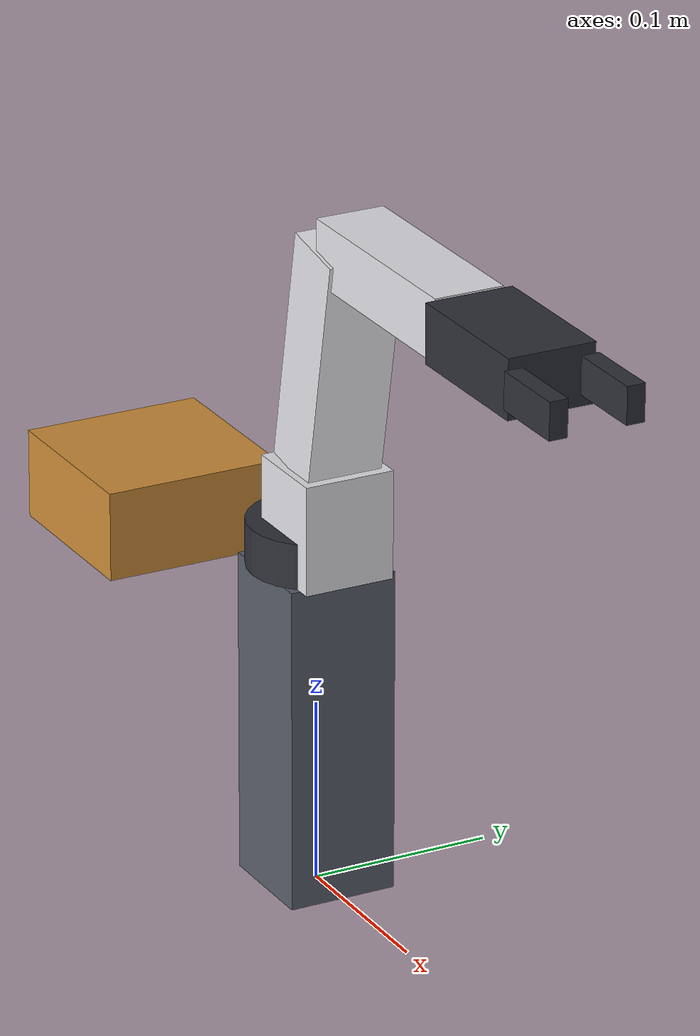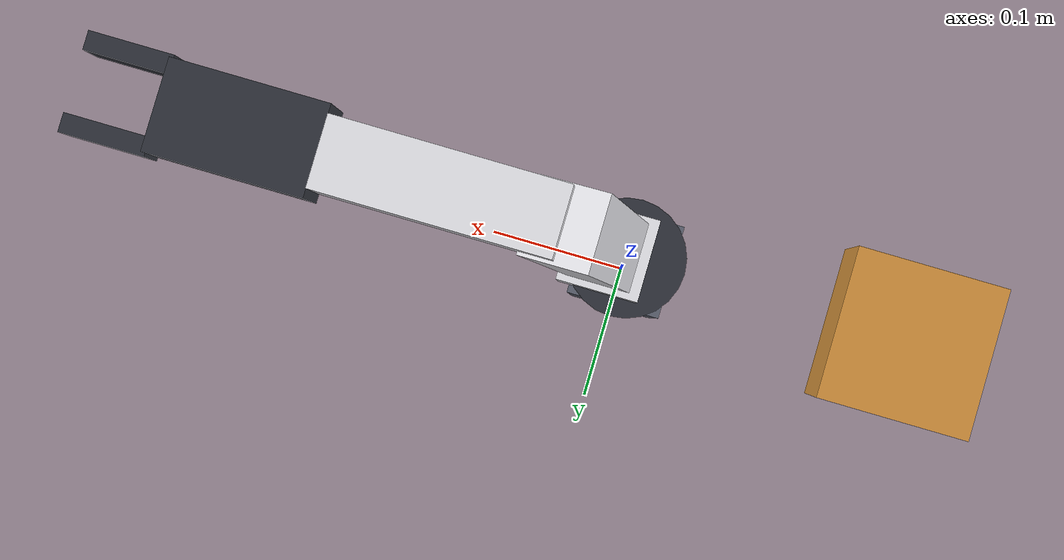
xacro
<?xml version="1.0"?>
<robot name="omx" xmlns:xacro="http://www.ros.org/wiki/xacro">

  <xacro:arg name="arm_name" default="omx_a"/>
  <xacro:arg name="body_color" default="0.90 0.90 0.92 1.0"/>
  <!-- 받침대 높이. 로봇 적재 데크(z≈0.076 m)를 내려다볼 수 있어야 한다. -->
  <xacro:arg name="pedestal_height" default="0.18"/>

  <xacro:property name="ns" value="$(arg arm_name)"/>
  <xacro:property name="prefix" value="$(arg arm_name)/"/>
  <xacro:property name="ped_h" value="$(arg pedestal_height)"/>

  <xacro:include filename="inertial_macros.xacro"/>

  <material name="omx_body"><color rgba="$(arg body_color)"/></material>
  <material name="omx_joint"><color rgba="0.18 0.19 0.22 1.0"/></material>
  <material name="omx_pedestal"><color rgba="0.35 0.37 0.42 1.0"/></material>
  <material name="omx_bin"><color rgba="0.80 0.55 0.22 1.0"/></material>

  <!-- ─────────────────────────────────────────── 월드 고정 받침대 -->

  <link name="world"/>

  <joint name="${prefix}world_fixed" type="fixed">
    <parent link="world"/>
    <child link="${prefix}pedestal"/>
    <origin xyz="0 0 0" rpy="0 0 0"/>
  </joint>

  <link name="${prefix}pedestal">
    <visual>
      <origin xyz="0 0 ${ped_h/2}" rpy="0 0 0"/>
      <geometry><box size="0.06 0.06 ${ped_h}"/></geometry>
      <material name="omx_pedestal"/>
    </visual>
    <collision>
      <origin xyz="0 0 ${ped_h/2}" rpy="0 0 0"/>
      <geometry><box size="0.06 0.06 ${ped_h}"/></geometry>
    </collision>
    <xacro:inertial_box mass="4.0" x="0.06" y="0.06" z="${ped_h}">
      <origin xyz="0 0 ${ped_h/2}" rpy="0 0 0"/>
    </xacro:inertial_box>
  </link>

  <!-- 팔이 집어 올리는 화물이 놓이는 자리(시각 표시).
       받침대·화물대는 통로를 침범하지 않도록 최소 단면으로 둔다. -->
  <joint name="${prefix}bin_fixed" type="fixed">
    <parent link="${prefix}pedestal"/>
    <child link="${prefix}bin"/>
    <origin xyz="-0.19 0 ${ped_h - 0.03}" rpy="0 0 0"/>
  </joint>

  <link name="${prefix}bin">
    <visual>
      <geometry><box size="0.10 0.10 0.05"/></geometry>
      <material name="omx_bin"/>
    </visual>
    <collision>
      <geometry><box size="0.10 0.10 0.05"/></geometry>
    </collision>
    <xacro:inertial_box mass="1.5" x="0.10" y="0.10" z="0.05">
      <origin xyz="0 0 0" rpy="0 0 0"/>
    </xacro:inertial_box>
  </link>

  <joint name="${prefix}base_fixed" type="fixed">
    <parent link="${prefix}pedestal"/>
    <child link="${prefix}link1"/>
    <origin xyz="0 0 ${ped_h}" rpy="0 0 0"/>
  </joint>

  <link name="${prefix}link1">
    <visual>
      <origin xyz="0 0 0.0125" rpy="0 0 0"/>
      <geometry><cylinder radius="0.037" length="0.025"/></geometry>
      <material name="omx_joint"/>
    </visual>
    <collision>
      <origin xyz="0 0 0.0125" rpy="0 0 0"/>
      <geometry><cylinder radius="0.037" length="0.025"/></geometry>
    </collision>
    <xacro:inertial_cylinder mass="0.0791" length="0.025" radius="0.037">
      <origin xyz="0 0 0.0125" rpy="0 0 0"/>
    </xacro:inertial_cylinder>
  </link>

  <joint name="${prefix}joint1" type="revolute">
    <parent link="${prefix}link1"/>
    <child link="${prefix}link2"/>
    <origin xyz="0.012 0.0 0.0" rpy="0 0 0"/>
    <axis xyz="0 0 1"/>
    <limit velocity="4.8" effort="1000" lower="${-pi}" upper="${pi}"/>
  </joint>

  <link name="${prefix}link2">
    <visual>
      <origin xyz="0 0 0.030" rpy="0 0 0"/>
      <geometry><box size="0.05 0.05 0.060"/></geometry>
      <material name="omx_body"/>
    </visual>
    <collision>
      <origin xyz="0 0 0.030" rpy="0 0 0"/>
      <geometry><box size="0.05 0.05 0.060"/></geometry>
    </collision>
    <xacro:inertial_box mass="0.0984" x="0.05" y="0.05" z="0.060">
      <origin xyz="0 0 0.030" rpy="0 0 0"/>
    </xacro:inertial_box>
  </link>

  <joint name="${prefix}joint2" type="revolute">
    <parent link="${prefix}link2"/>
    <child link="${prefix}link3"/>
    <origin xyz="0.0 0.0 0.0595" rpy="0 0 0"/>
    <axis xyz="0 1 0"/>
    <limit velocity="4.8" effort="1000" lower="${-1.5}" upper="${1.5}"/>
  </joint>

  <!-- 상완: (0,0,0) → (0.024, 0, 0.128), 길이 0.1302 -->
  <link name="${prefix}link3">
    <visual>
      <origin xyz="0.012 0 0.064" rpy="0 0.1855 0"/>
      <geometry><box size="0.038 0.042 0.1302"/></geometry>
      <material name="omx_body"/>
    </visual>
    <collision>
      <origin xyz="0.012 0 0.064" rpy="0 0.1855 0"/>
      <geometry><box size="0.038 0.042 0.1302"/></geometry>
    </collision>
    <xacro:inertial_box mass="0.1385" x="0.038" y="0.042" z="0.1302">
      <origin xyz="0.012 0 0.064" rpy="0 0.1855 0"/>
    </xacro:inertial_box>
  </link>

  <joint name="${prefix}joint3" type="revolute">
    <parent link="${prefix}link3"/>
    <child link="${prefix}link4"/>
    <origin xyz="0.024 0 0.128" rpy="0 0 0"/>
    <axis xyz="0 1 0"/>
    <limit velocity="4.8" effort="1000" lower="${-1.5}" upper="${1.4}"/>
  </joint>

  <!-- 전완: (0,0,0) → (0.124, 0, 0) -->
  <link name="${prefix}link4">
    <visual>
      <origin xyz="0.062 0 0" rpy="0 ${pi/2} 0"/>
      <geometry><box size="0.034 0.038 0.124"/></geometry>
      <material name="omx_body"/>
    </visual>
    <collision>
      <origin xyz="0.062 0 0" rpy="0 ${pi/2} 0"/>
      <geometry><box size="0.034 0.038 0.124"/></geometry>
    </collision>
    <xacro:inertial_box mass="0.1327" x="0.034" y="0.038" z="0.124">
      <origin xyz="0.062 0 0" rpy="0 ${pi/2} 0"/>
    </xacro:inertial_box>
  </link>

  <joint name="${prefix}joint4" type="revolute">
    <parent link="${prefix}link4"/>
    <child link="${prefix}link5"/>
    <origin xyz="0.124 0.0 0.0" rpy="0 0 0"/>
    <axis xyz="0 1 0"/>
    <limit velocity="4.8" effort="1000" lower="${-1.7}" upper="${1.97}"/>
  </joint>

  <!-- 손목 + 그리퍼 베이스 -->
  <link name="${prefix}link5">
    <visual>
      <origin xyz="0.041 0 0" rpy="0 ${pi/2} 0"/>
      <geometry><box size="0.032 0.048 0.082"/></geometry>
      <material name="omx_joint"/>
    </visual>
    <collision>
      <origin xyz="0.041 0 0" rpy="0 ${pi/2} 0"/>
      <geometry><box size="0.032 0.048 0.082"/></geometry>
    </collision>
    <xacro:inertial_box mass="0.1433" x="0.032" y="0.048" z="0.082">
      <origin xyz="0.041 0 0" rpy="0 ${pi/2} 0"/>
    </xacro:inertial_box>
  </link>

  <xacro:macro name="finger" params="side y_sign">
    <joint name="${prefix}gripper_${side}_joint" type="prismatic">
      <parent link="${prefix}link5"/>
      <child link="${prefix}gripper_${side}_link"/>
      <origin xyz="0.0817 ${y_sign * 0.021} 0.0" rpy="0 0 0"/>
      <axis xyz="0 ${y_sign} 0"/>
      <limit velocity="4.8" effort="1000" lower="-0.011" upper="0.02"/>
    </joint>

    <link name="${prefix}gripper_${side}_link">
      <visual>
        <origin xyz="0.022 0 0" rpy="0 0 0"/>
        <geometry><box size="0.044 0.010 0.020"/></geometry>
        <material name="omx_joint"/>
      </visual>
      <collision>
        <origin xyz="0.022 0 0" rpy="0 0 0"/>
        <geometry><box size="0.044 0.010 0.020"/></geometry>
      </collision>
      <xacro:inertial_box mass="0.010" x="0.044" y="0.010" z="0.020">
        <origin xyz="0.022 0 0" rpy="0 0 0"/>
      </xacro:inertial_box>
    </link>
  </xacro:macro>

  <xacro:finger side="left" y_sign="1"/>
  <xacro:finger side="right" y_sign="-1"/>

  <link name="${prefix}end_effector_link"/>

  <joint name="${prefix}end_effector_joint" type="fixed">
    <parent link="${prefix}link5"/>
    <child link="${prefix}end_effector_link"/>
    <origin xyz="0.126 0.0 0.0" rpy="0 0 0"/>
  </joint>

  <!-- ─────────────────────────────────────────── Gazebo -->

  <gazebo>
    <xacro:macro name="joint_controller" params="joint gain init">
      <plugin filename="gz-sim-joint-position-controller-system"
              name="gz::sim::systems::JointPositionController">
        <joint_name>${prefix}${joint}</joint_name>
        <topic>/${ns}/${joint}_cmd</topic>
        <use_velocity_commands>true</use_velocity_commands>
        <p_gain>${gain}</p_gain>
        <initial_position>${init}</initial_position>
      </plugin>
    </xacro:macro>

    <xacro:joint_controller joint="joint1" gain="12.0" init="0.0"/>
    <xacro:joint_controller joint="joint2" gain="12.0" init="-0.292"/>
    <xacro:joint_controller joint="joint3" gain="12.0" init="0.375"/>
    <xacro:joint_controller joint="joint4" gain="12.0" init="0.817"/>
    <xacro:joint_controller joint="gripper_left_joint" gain="25.0" init="0.019"/>
    <xacro:joint_controller joint="gripper_right_joint" gain="25.0" init="0.019"/>

    <plugin filename="gz-sim-joint-state-publisher-system"
            name="gz::sim::systems::JointStatePublisher">
      <topic>/${ns}/joint_states</topic>
      <joint_name>${prefix}joint1</joint_name>
      <joint_name>${prefix}joint2</joint_name>
      <joint_name>${prefix}joint3</joint_name>
      <joint_name>${prefix}joint4</joint_name>
      <joint_name>${prefix}gripper_left_joint</joint_name>
      <joint_name>${prefix}gripper_right_joint</joint_name>
    </plugin>
  </gazebo>

</robot>

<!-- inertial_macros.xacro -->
<!-- 기본 도형의 관성 텐서 매크로. -->
<robot xmlns:xacro="http://www.ros.org/wiki/xacro">

  <xacro:macro name="inertial_sphere" params="mass radius *origin">
    <inertial>
      <xacro:insert_block name="origin"/>
      <mass value="${mass}"/>
      <inertia ixx="${(2/5) * mass * (radius*radius)}" ixy="0.0" ixz="0.0"
               iyy="${(2/5) * mass * (radius*radius)}" iyz="0.0"
               izz="${(2/5) * mass * (radius*radius)}"/>
    </inertial>
  </xacro:macro>

  <xacro:macro name="inertial_box" params="mass x y z *origin">
    <inertial>
      <xacro:insert_block name="origin"/>
      <mass value="${mass}"/>
      <inertia ixx="${(1/12) * mass * (y*y+z*z)}" ixy="0.0" ixz="0.0"
               iyy="${(1/12) * mass * (x*x+z*z)}" iyz="0.0"
               izz="${(1/12) * mass * (x*x+y*y)}"/>
    </inertial>
  </xacro:macro>

  <xacro:macro name="inertial_cylinder" params="mass length radius *origin">
    <inertial>
      <xacro:insert_block name="origin"/>
      <mass value="${mass}"/>
      <inertia ixx="${(1/12) * mass * (3*radius*radius + length*length)}" ixy="0.0" ixz="0.0"
               iyy="${(1/12) * mass * (3*radius*radius + length*length)}" iyz="0.0"
               izz="${(1/2) * mass * (radius*radius)}"/>
    </inertial>
  </xacro:macro>

</robot>
